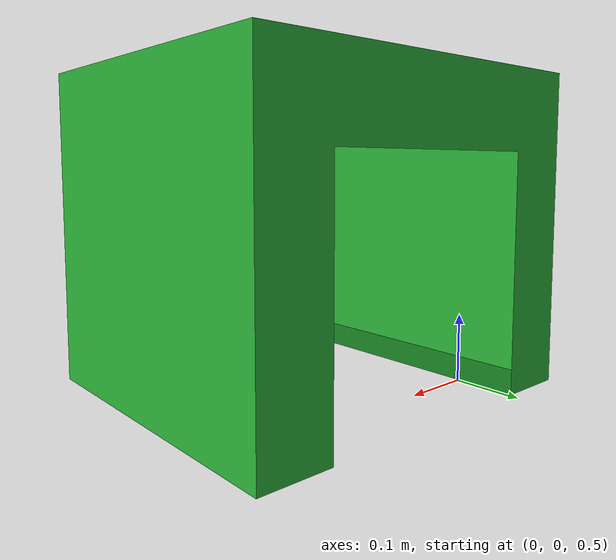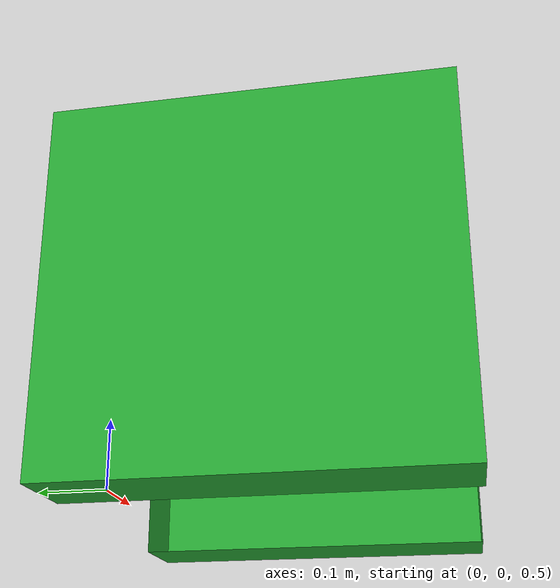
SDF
<?xml version='1.0'?>
<sdf version='1.6'>
  <model name='Box'>
    <pose> 0 0 0 0 0 0 </pose>
    <static>true</static>
    <link name="link">
      <collision name="collision">
        <geometry>
          <mesh>
            <uri>model://Box/meshes/BOX.stl</uri>
            <scale>1 1 1</scale>
          </mesh>
        </geometry>
      </collision>

      <visual name="visual">
        <geometry>
          <mesh>
            <uri>model://Box/meshes/BOX.stl</uri>
            <scale>1 1 1</scale>
          </mesh>
        </geometry>
        <material>
          <script>
            <name>Gazebo/Green</name>
          </script>
        </material>
      </visual>
    </link>
  </model>
</sdf>
